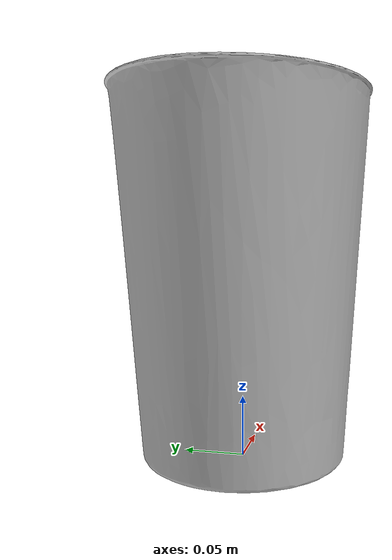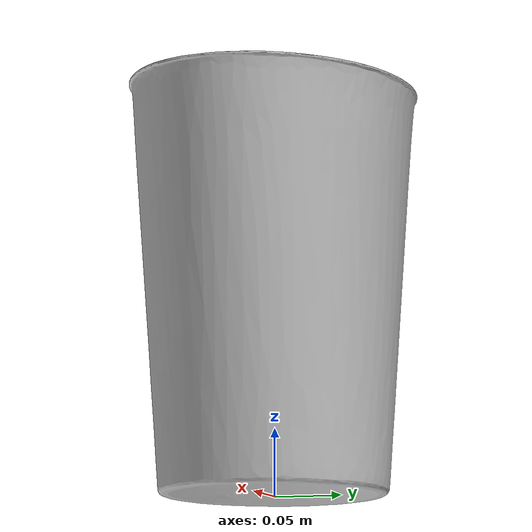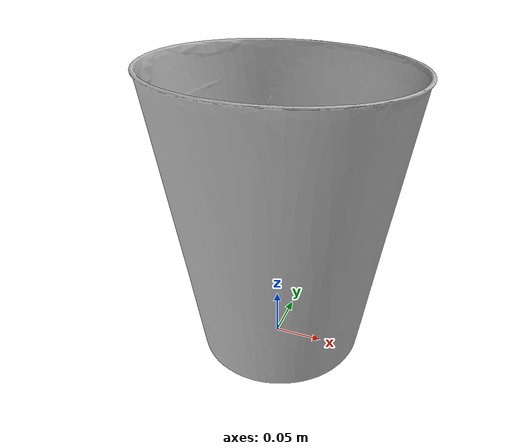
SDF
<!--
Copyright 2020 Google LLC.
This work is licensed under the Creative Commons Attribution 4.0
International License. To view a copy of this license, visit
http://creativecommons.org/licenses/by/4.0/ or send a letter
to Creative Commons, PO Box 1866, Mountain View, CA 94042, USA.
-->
<?xml version="1.0" ?>
<sdf version="1.6">
  <model name="Hefty_Waste_Basket_Decorative_Bronze_85_liter">
    <link name="link_0">
      <inertial>
        <mass>0.75</mass>
        <inertia>
          <ixx>0.0141829</ixx>
          <ixy>0</ixy>
          <ixz>0</ixz>
          <iyy>0.0141829</iyy>
          <iyz>0</iyz>
          <izz>0.00264221</izz>
        </inertia>
        <pose frame=''>0 0 0.07 0 0 0</pose>

      </inertial>
      <visual name="visual">
        <geometry>
          <mesh>
            <uri>meshes/model.obj</uri>
          </mesh>
        </geometry>
      </visual>
      <collision name="collision_0">
        <geometry>
          <mesh>
            <uri>meshes/model.obj</uri>
          </mesh>
        </geometry>
      </collision>
    </link>
  </model>
</sdf>
